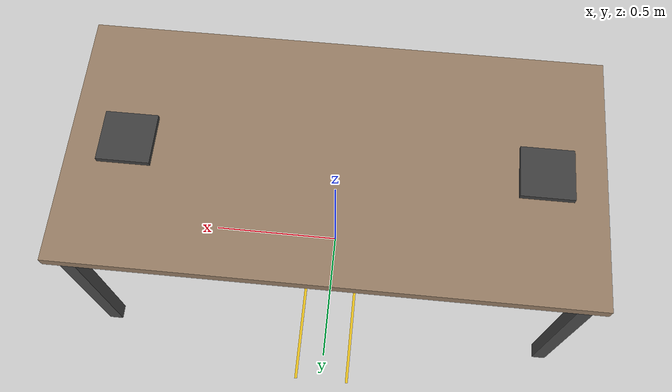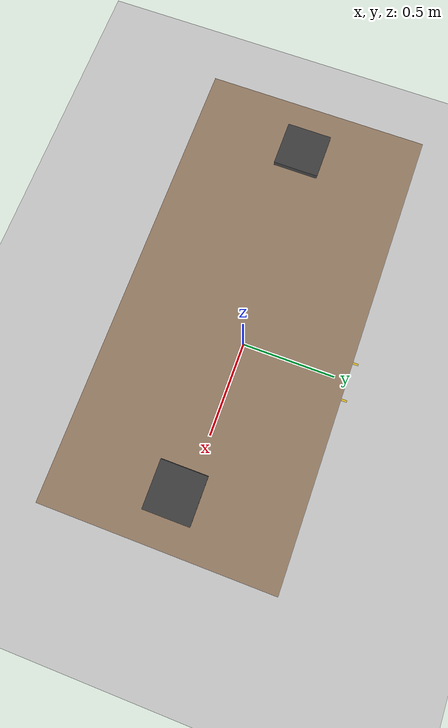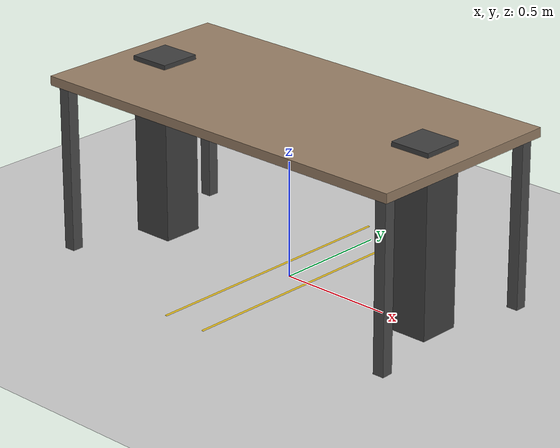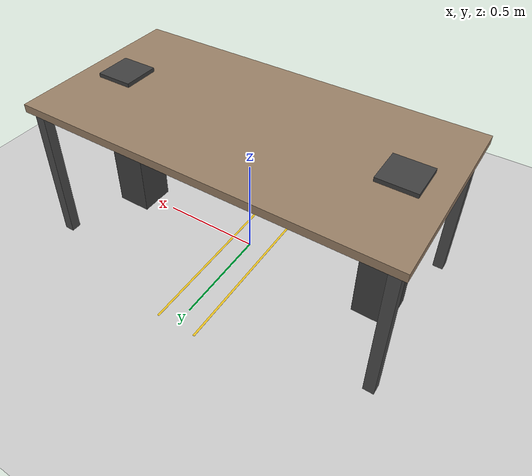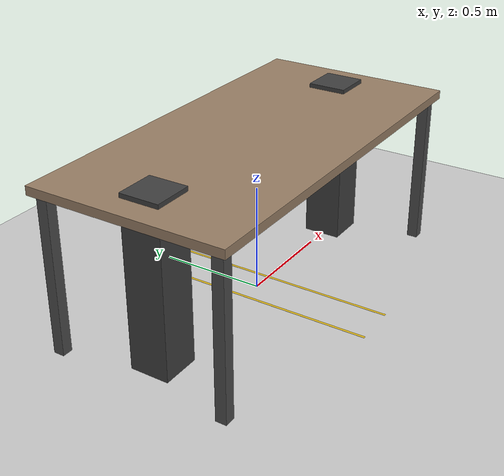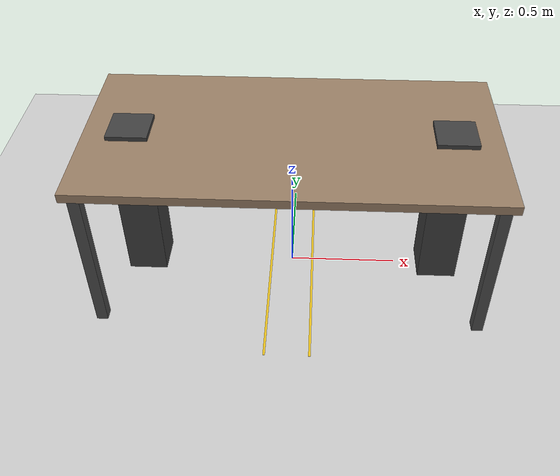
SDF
<?xml version="1.0" ?>
<sdf version="1.6">
  <world name="ur5e_collision_world">

    <!-- ── Physics ──────────────────────────────────────────── -->
    <physics name="default_physics" default="0" type="ode">
      <max_step_size>0.001</max_step_size>
      <real_time_factor>1</real_time_factor>
      <real_time_update_rate>1000</real_time_update_rate>
    </physics>

    <!-- ── Plugins ──────────────────────────────────────────── -->
    <plugin name="gazebo_ros_state" filename="libgazebo_ros_state.so">
      <ros><namespace>/gazebo</namespace></ros>
      <update_rate>50.0</update_rate>
    </plugin>

    <!-- ── Lighting ─────────────────────────────────────────── -->
    <light name="sun" type="directional">
      <cast_shadows>true</cast_shadows>
      <pose>0 0 10 0 0 0</pose>
      <diffuse>0.8 0.8 0.8 1</diffuse>
      <specular>0.2 0.2 0.2 1</specular>
      <attenuation><range>1000</range><constant>0.9</constant><linear>0.01</linear><quadratic>0.001</quadratic></attenuation>
      <direction>-0.5 0.1 -0.9</direction>
    </light>

    <light name="ambient_fill" type="directional">
      <pose>0 5 5 0 0 0</pose>
      <diffuse>0.4 0.4 0.5 1</diffuse>
      <specular>0.0 0.0 0.0 1</specular>
      <direction>0 -0.5 -0.5</direction>
    </light>

    <!-- ── Ground plane ─────────────────────────────────────── -->
    <model name="ground_plane">
      <static>true</static>
      <link name="link">
        <collision name="collision"><geometry><plane><normal>0 0 1</normal><size>20 20</size></plane></geometry></collision>
        <visual name="visual">
          <geometry><plane><normal>0 0 1</normal><size>20 20</size></plane></geometry>
          <material>
            <script><uri>file://media/materials/scripts/gazebo.material</uri><name>Gazebo/Grey</name></script>
          </material>
        </visual>
      </link>
    </model>

    <!-- ── Shared worktable ─────────────────────────────────── -->
    <model name="worktable">
      <static>true</static>
      <pose>0 0 0 0 0 0</pose>
      <link name="link">
        <!-- Tabletop -->
        <collision name="top_collision">
          <pose>0 0 0.74 0 0 0</pose>
          <geometry><box><size>1.8 0.9 0.04</size></box></geometry>
        </collision>
        <visual name="top_visual">
          <pose>0 0 0.74 0 0 0</pose>
          <geometry><box><size>1.8 0.9 0.04</size></box></geometry>
          <material><ambient>0.55 0.45 0.35 1</ambient><diffuse>0.6 0.5 0.4 1</diffuse></material>
        </visual>
        <!-- Legs -->
        <collision name="leg1_col"><pose>-0.85 0.40 0.37 0 0 0</pose><geometry><box><size>0.05 0.05 0.74</size></box></geometry></collision>
        <visual name="leg1_vis"><pose>-0.85 0.40 0.37 0 0 0</pose><geometry><box><size>0.05 0.05 0.74</size></box></geometry><material><ambient>0.3 0.3 0.3 1</ambient></material></visual>
        <collision name="leg2_col"><pose>-0.85 -0.40 0.37 0 0 0</pose><geometry><box><size>0.05 0.05 0.74</size></box></geometry></collision>
        <visual name="leg2_vis"><pose>-0.85 -0.40 0.37 0 0 0</pose><geometry><box><size>0.05 0.05 0.74</size></box></geometry><material><ambient>0.3 0.3 0.3 1</ambient></material></visual>
        <collision name="leg3_col"><pose>0.85 0.40 0.37 0 0 0</pose><geometry><box><size>0.05 0.05 0.74</size></box></geometry></collision>
        <visual name="leg3_vis"><pose>0.85 0.40 0.37 0 0 0</pose><geometry><box><size>0.05 0.05 0.74</size></box></geometry><material><ambient>0.3 0.3 0.3 1</ambient></material></visual>
        <collision name="leg4_col"><pose>0.85 -0.40 0.37 0 0 0</pose><geometry><box><size>0.05 0.05 0.74</size></box></geometry></collision>
        <visual name="leg4_vis"><pose>0.85 -0.40 0.37 0 0 0</pose><geometry><box><size>0.05 0.05 0.74</size></box></geometry><material><ambient>0.3 0.3 0.3 1</ambient></material></visual>
      </link>
    </model>

    <!-- ── Robot mounting pedestals ─────────────────────────── -->
    <model name="pedestal_robot1">
      <static>true</static>
      <pose>-0.7 0 0 0 0 0</pose>
      <link name="link">
        <collision name="col"><geometry><box><size>0.18 0.18 0.78</size></box></geometry><pose>0 0 0.39 0 0 0</pose></collision>
        <visual name="vis"><geometry><box><size>0.18 0.18 0.78</size></box></geometry><pose>0 0 0.39 0 0 0</pose>
          <material><ambient>0.2 0.2 0.2 1</ambient><diffuse>0.25 0.25 0.25 1</diffuse></material></visual>
      </link>
    </model>

    <model name="pedestal_robot2">
      <static>true</static>
      <pose>0.7 0 0 0 0 0</pose>
      <link name="link">
        <collision name="col"><geometry><box><size>0.18 0.18 0.78</size></box></geometry><pose>0 0 0.39 0 0 0</pose></collision>
        <visual name="vis"><geometry><box><size>0.18 0.18 0.78</size></box></geometry><pose>0 0 0.39 0 0 0</pose>
          <material><ambient>0.2 0.2 0.2 1</ambient><diffuse>0.25 0.25 0.25 1</diffuse></material></visual>
      </link>
    </model>

    <!-- ── Safety zone markers (yellow boundary strips) ──────── -->
    <model name="safety_strip_left">
      <static>true</static>
      <pose>-0.1 0 0.001 0 0 0</pose>
      <link name="link">
        <visual name="vis">
          <geometry><box><size>0.01 1.2 0.002</size></box></geometry>
          <material><ambient>1.0 0.8 0.0 0.8</ambient><diffuse>1.0 0.8 0.0 0.8</diffuse></material>
        </visual>
      </link>
    </model>

    <model name="safety_strip_right">
      <static>true</static>
      <pose>0.1 0 0.001 0 0 0</pose>
      <link name="link">
        <visual name="vis">
          <geometry><box><size>0.01 1.2 0.002</size></box></geometry>
          <material><ambient>1.0 0.8 0.0 0.8</ambient><diffuse>1.0 0.8 0.0 0.8</diffuse></material>
        </visual>
      </link>
    </model>

  </world>
</sdf>
